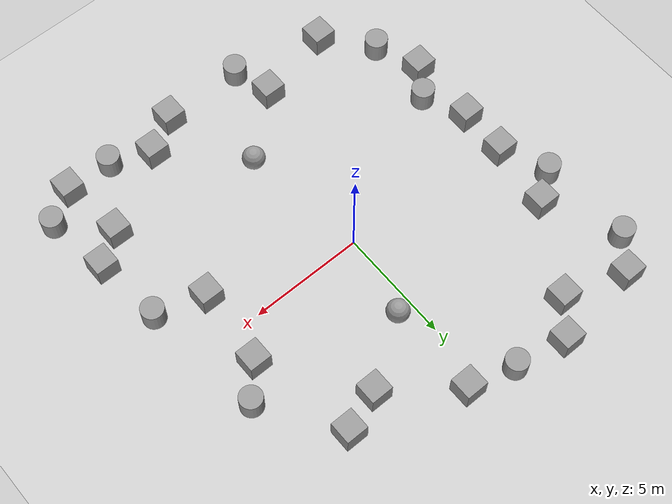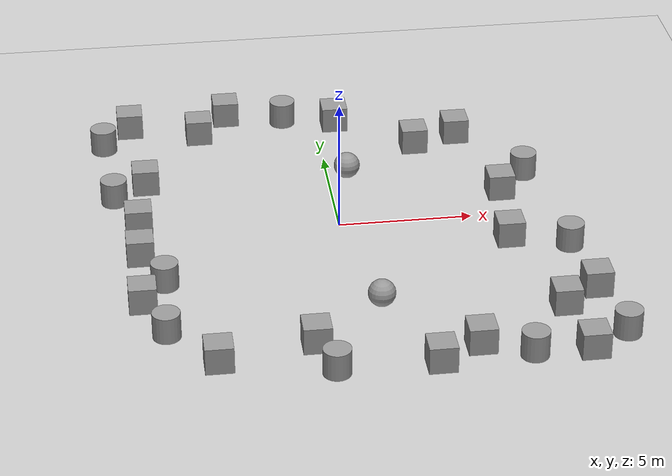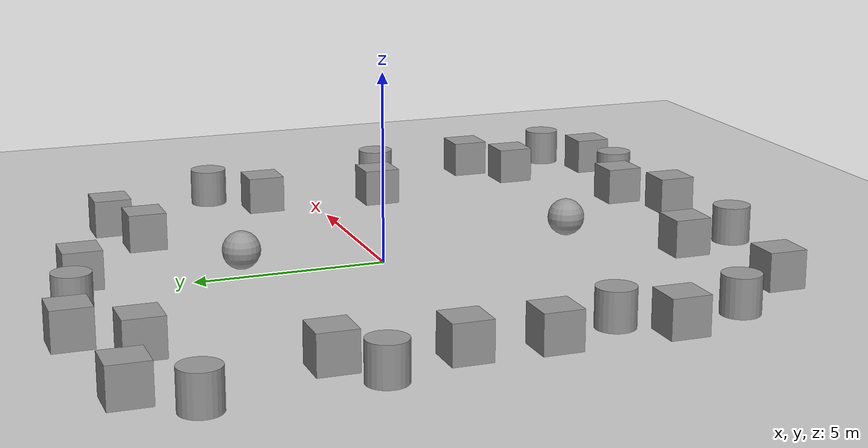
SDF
<sdf version="1.6">
 <world name="default">
  <light name="sun" type="directional">
   <pose>0 0 10 0 -0 0</pose>
   <diffuse>0.8 0.8 0.8 1</diffuse>
   <specular>0.1 0.1 0.1 1</specular>
   <attenuation>
    <range>1000</range>
    <constant>0.9</constant>
    <linear>0.01</linear>
    <quadratic>0.001</quadratic>
   </attenuation>
   <direction>-0.5 0.5 -1</direction>
  </light>
  <model name="ground_plane">
   <static>1</static>
   <link name="link">
    <collision name="collision">
     <geometry><plane><normal>0 0 1</normal><size>100 100</size></plane></geometry>
     <surface><friction><ode><mu>100</mu><mu2>50</mu2></ode></friction></surface>
    </collision>
    <visual name="visual">
     <cast_shadows>0</cast_shadows>
     <geometry><plane><normal>0 0 1</normal><size>100 100</size></plane></geometry>
     <material>
      <script><uri>file://media/materials/scripts/gazebo.material</uri><name>Gazebo/Grey</name></script>
     </material>
    </visual>
   </link>
  </model>
  <gravity>0 0 -9.8</gravity>
  <magnetic_field>6e-06 2.3e-05 -4.2e-05</magnetic_field>
  <atmosphere type="adiabatic"/>
  <physics name="default_physics" default="0" type="ode">
   <max_step_size>0.001</max_step_size>
   <real_time_factor>1</real_time_factor>
   <real_time_update_rate>1000</real_time_update_rate>
  </physics>
  <scene><ambient>0.4 0.4 0.4 1</ambient><background>0.7 0.7 0.7 1</background><shadows>1</shadows></scene>
  <spherical_coordinates>
   <surface_model>EARTH_WGS84</surface_model>
   <latitude_deg>0</latitude_deg>
   <longitude_deg>0</longitude_deg>
   <elevation>0</elevation>
   <heading_deg>0</heading_deg>
  </spherical_coordinates>
  <model name="unit_box">
   <pose>-5.1932 -8.54457 0.499995 0 1e-05 0</pose>
   <link name="link">
    <inertial>
     <mass>1</mass>
     <inertia>
      <ixx>0.166667</ixx>
      <ixy>0</ixy>
      <ixz>0</ixz>
      <iyy>0.166667</iyy>
      <iyz>0</iyz>
      <izz>0.166667</izz>
     </inertia>
    </inertial>
    <collision name="collision"><geometry><box><size>1 1 1</size></box></geometry></collision>
    <visual name="visual">
     <geometry><box><size>1 1 1</size></box></geometry>
     <material>
      <script><name>Gazebo/Grey</name><uri>file://media/materials/scripts/gazebo.material</uri></script>
     </material>
    </visual>
   </link>
  </model>
  <model name="unit_sphere">
   <pose>0.805066 -5.54254 0.5 0 -0 0</pose>
   <link name="link">
    <inertial>
     <mass>1</mass>
     <inertia><ixx>0.1</ixx><ixy>0</ixy><ixz>0</ixz><iyy>0.1</iyy><iyz>0</iyz><izz>0.1</izz></inertia>
    </inertial>
    <collision name="collision"><geometry><sphere><radius>0.5</radius></sphere></geometry></collision>
    <visual name="visual">
     <geometry><sphere><radius>0.5</radius></sphere></geometry>
     <material>
      <script><name>Gazebo/Grey</name><uri>file://media/materials/scripts/gazebo.material</uri></script>
     </material>
    </visual>
   </link>
  </model>
  <model name="unit_sphere_0">
   <pose>0.742958 3.57803 0.5 0 -0 0</pose>
   <link name="link">
    <inertial>
     <mass>1</mass>
     <inertia><ixx>0.1</ixx><ixy>0</ixy><ixz>0</ixz><iyy>0.1</iyy><iyz>0</iyz><izz>0.1</izz></inertia>
    </inertial>
    <collision name="collision"><geometry><sphere><radius>0.5</radius></sphere></geometry></collision>
    <visual name="visual">
     <geometry><sphere><radius>0.5</radius></sphere></geometry>
     <material>
      <script><name>Gazebo/Grey</name><uri>file://media/materials/scripts/gazebo.material</uri></script>
     </material>
    </visual>
   </link>
  </model>
  <model name="unit_cylinder">
   <pose>-1.27782 -9.47436 0.499992 -3e-06 -4e-06 -0</pose>
   <link name="link">
    <inertial>
     <mass>1</mass>
     <inertia><ixx>0.145833</ixx><ixy>0</ixy><ixz>0</ixz><iyy>0.145833</iyy><iyz>0</iyz><izz>0.125</izz></inertia>
    </inertial>
    <collision name="collision">
     <geometry><cylinder><radius>0.5</radius><length>1</length></cylinder></geometry>
    </collision>
    <visual name="visual">
     <geometry><cylinder><radius>0.5</radius><length>1</length></cylinder></geometry>
     <material>
      <script><name>Gazebo/Grey</name><uri>file://media/materials/scripts/gazebo.material</uri></script>
     </material>
    </visual>
   </link>
  </model>
  <model name="unit_box_0">
   <pose>-1.78077 -7.7902 0.499995 0 1e-05 0</pose>
   <link name="link">
    <inertial>
     <mass>1</mass>
     <inertia>
      <ixx>0.166667</ixx>
      <ixy>0</ixy>
      <ixz>0</ixz>
      <iyy>0.166667</iyy>
      <iyz>0</iyz>
      <izz>0.166667</izz>
     </inertia>
    </inertial>
    <collision name="collision"><geometry><box><size>1 1 1</size></box></geometry></collision>
    <visual name="visual">
     <geometry><box><size>1 1 1</size></box></geometry>
     <material>
      <script><name>Gazebo/Grey</name><uri>file://media/materials/scripts/gazebo.material</uri></script>
     </material>
    </visual>
   </link>
  </model>
  <model name="unit_box_1">
   <pose>2.26891 -9.47752 0.499995 -1e-05 0 0</pose>
   <link name="link">
    <inertial>
     <mass>1</mass>
     <inertia>
      <ixx>0.166667</ixx>
      <ixy>0</ixy>
      <ixz>0</ixz>
      <iyy>0.166667</iyy>
      <iyz>0</iyz>
      <izz>0.166667</izz>
     </inertia>
    </inertial>
    <collision name="collision"><geometry><box><size>1 1 1</size></box></geometry></collision>
    <visual name="visual">
     <geometry><box><size>1 1 1</size></box></geometry>
     <material>
      <script><name>Gazebo/Grey</name><uri>file://media/materials/scripts/gazebo.material</uri></script>
     </material>
    </visual>
   </link>
  </model>
  <model name="unit_cylinder_0">
   <pose>-6.8306 -6.56388 0.499994 -4e-06 -3e-06 -0</pose>
   <link name="link">
    <inertial>
     <mass>1</mass>
     <inertia><ixx>0.145833</ixx><ixy>0</ixy><ixz>0</ixz><iyy>0.145833</iyy><iyz>0</iyz><izz>0.125</izz></inertia>
    </inertial>
    <collision name="collision">
     <geometry><cylinder><radius>0.5</radius><length>1</length></cylinder></geometry>
    </collision>
    <visual name="visual">
     <geometry><cylinder><radius>0.5</radius><length>1</length></cylinder></geometry>
     <material>
      <script><name>Gazebo/Grey</name><uri>file://media/materials/scripts/gazebo.material</uri></script>
     </material>
    </visual>
   </link>
  </model>
  <model name="unit_box_2">
   <pose>-7.55878 -4.59602 0.499995 -1e-05 0 0</pose>
   <link name="link">
    <inertial>
     <mass>1</mass>
     <inertia>
      <ixx>0.166667</ixx>
      <ixy>0</ixy>
      <ixz>0</ixz>
      <iyy>0.166667</iyy>
      <iyz>0</iyz>
      <izz>0.166667</izz>
     </inertia>
    </inertial>
    <collision name="collision"><geometry><box><size>1 1 1</size></box></geometry></collision>
    <visual name="visual">
     <geometry><box><size>1 1 1</size></box></geometry>
     <material>
      <script><name>Gazebo/Grey</name><uri>file://media/materials/scripts/gazebo.material</uri></script>
     </material>
    </visual>
   </link>
  </model>
  <model name="unit_cylinder_1">
   <pose>-6.70404 -3.35499 0.499992 -3e-06 2e-06 0</pose>
   <link name="link">
    <inertial>
     <mass>1</mass>
     <inertia><ixx>0.145833</ixx><ixy>0</ixy><ixz>0</ixz><iyy>0.145833</iyy><iyz>0</iyz><izz>0.125</izz></inertia>
    </inertial>
    <collision name="collision">
     <geometry><cylinder><radius>0.5</radius><length>1</length></cylinder></geometry>
    </collision>
    <visual name="visual">
     <geometry><cylinder><radius>0.5</radius><length>1</length></cylinder></geometry>
     <material>
      <script><name>Gazebo/Grey</name><uri>file://media/materials/scripts/gazebo.material</uri></script>
     </material>
    </visual>
   </link>
  </model>
  <model name="unit_box_3">
   <pose>-7.49308 -1.47385 0.499995 -1e-05 0 0</pose>
   <link name="link">
    <inertial>
     <mass>1</mass>
     <inertia>
      <ixx>0.166667</ixx>
      <ixy>0</ixy>
      <ixz>0</ixz>
      <iyy>0.166667</iyy>
      <iyz>0</iyz>
      <izz>0.166667</izz>
     </inertia>
    </inertial>
    <collision name="collision"><geometry><box><size>1 1 1</size></box></geometry></collision>
    <visual name="visual">
     <geometry><box><size>1 1 1</size></box></geometry>
     <material>
      <script><name>Gazebo/Grey</name><uri>file://media/materials/scripts/gazebo.material</uri></script>
     </material>
    </visual>
   </link>
  </model>
  <model name="unit_box_4">
   <pose>-7.44449 0.656898 0.499995 0 1e-05 0</pose>
   <link name="link">
    <inertial>
     <mass>1</mass>
     <inertia>
      <ixx>0.166667</ixx>
      <ixy>0</ixy>
      <ixz>0</ixz>
      <iyy>0.166667</iyy>
      <iyz>0</iyz>
      <izz>0.166667</izz>
     </inertia>
    </inertial>
    <collision name="collision"><geometry><box><size>1 1 1</size></box></geometry></collision>
    <visual name="visual">
     <geometry><box><size>1 1 1</size></box></geometry>
     <material>
      <script><name>Gazebo/Grey</name><uri>file://media/materials/scripts/gazebo.material</uri></script>
     </material>
    </visual>
   </link>
  </model>
  <model name="unit_box_5">
   <pose>3.79778 -8.57423 0.499995 -1e-05 0 0</pose>
   <link name="link">
    <inertial>
     <mass>1</mass>
     <inertia>
      <ixx>0.166667</ixx>
      <ixy>0</ixy>
      <ixz>0</ixz>
      <iyy>0.166667</iyy>
      <iyz>0</iyz>
      <izz>0.166667</izz>
     </inertia>
    </inertial>
    <collision name="collision"><geometry><box><size>1 1 1</size></box></geometry></collision>
    <visual name="visual">
     <geometry><box><size>1 1 1</size></box></geometry>
     <material>
      <script><name>Gazebo/Grey</name><uri>file://media/materials/scripts/gazebo.material</uri></script>
     </material>
    </visual>
   </link>
  </model>
  <model name="unit_cylinder_2">
   <pose>-8.26882 2.7434 0.499993 -3e-06 2e-06 0</pose>
   <link name="link">
    <inertial>
     <mass>1</mass>
     <inertia><ixx>0.145833</ixx><ixy>0</ixy><ixz>0</ixz><iyy>0.145833</iyy><iyz>0</iyz><izz>0.125</izz></inertia>
    </inertial>
    <collision name="collision">
     <geometry><cylinder><radius>0.5</radius><length>1</length></cylinder></geometry>
    </collision>
    <visual name="visual">
     <geometry><cylinder><radius>0.5</radius><length>1</length></cylinder></geometry>
     <material>
      <script><name>Gazebo/Grey</name><uri>file://media/materials/scripts/gazebo.material</uri></script>
     </material>
    </visual>
   </link>
  </model>
  <model name="unit_box_6">
   <pose>-7.03898 3.58624 0.499995 -1e-05 0 0</pose>
   <link name="link">
    <inertial>
     <mass>1</mass>
     <inertia>
      <ixx>0.166667</ixx>
      <ixy>0</ixy>
      <ixz>0</ixz>
      <iyy>0.166667</iyy>
      <iyz>0</iyz>
      <izz>0.166667</izz>
     </inertia>
    </inertial>
    <collision name="collision"><geometry><box><size>1 1 1</size></box></geometry></collision>
    <visual name="visual">
     <geometry><box><size>1 1 1</size></box></geometry>
     <material>
      <script><name>Gazebo/Grey</name><uri>file://media/materials/scripts/gazebo.material</uri></script>
     </material>
    </visual>
   </link>
  </model>
  <model name="unit_cylinder_3">
   <pose>-8.51797 6.81147 0.499993 -3e-06 2e-06 0</pose>
   <link name="link">
    <inertial>
     <mass>1</mass>
     <inertia><ixx>0.145833</ixx><ixy>0</ixy><ixz>0</ixz><iyy>0.145833</iyy><iyz>0</iyz><izz>0.125</izz></inertia>
    </inertial>
    <collision name="collision">
     <geometry><cylinder><radius>0.5</radius><length>1</length></cylinder></geometry>
    </collision>
    <visual name="visual">
     <geometry><cylinder><radius>0.5</radius><length>1</length></cylinder></geometry>
     <material>
      <script><name>Gazebo/Grey</name><uri>file://media/materials/scripts/gazebo.material</uri></script>
     </material>
    </visual>
   </link>
  </model>
  <model name="unit_box_7">
   <pose>-7.43907 8.12874 0.499995 -1e-05 0 0</pose>
   <link name="link">
    <inertial>
     <mass>1</mass>
     <inertia>
      <ixx>0.166667</ixx>
      <ixy>0</ixy>
      <ixz>0</ixz>
      <iyy>0.166667</iyy>
      <iyz>0</iyz>
      <izz>0.166667</izz>
     </inertia>
    </inertial>
    <collision name="collision"><geometry><box><size>1 1 1</size></box></geometry></collision>
    <visual name="visual">
     <geometry><box><size>1 1 1</size></box></geometry>
     <material>
      <script><name>Gazebo/Grey</name><uri>file://media/materials/scripts/gazebo.material</uri></script>
     </material>
    </visual>
   </link>
  </model>
  <model name="unit_box_8">
   <pose>-4.74207 7.27141 0.499995 0 1e-05 0</pose>
   <link name="link">
    <inertial>
     <mass>1</mass>
     <inertia>
      <ixx>0.166667</ixx>
      <ixy>0</ixy>
      <ixz>0</ixz>
      <iyy>0.166667</iyy>
      <iyz>0</iyz>
      <izz>0.166667</izz>
     </inertia>
    </inertial>
    <collision name="collision"><geometry><box><size>1 1 1</size></box></geometry></collision>
    <visual name="visual">
     <geometry><box><size>1 1 1</size></box></geometry>
     <material>
      <script><name>Gazebo/Grey</name><uri>file://media/materials/scripts/gazebo.material</uri></script>
     </material>
    </visual>
   </link>
  </model>
  <model name="unit_box_9">
   <pose>-3.5708 8.64898 0.499995 -1e-05 0 0</pose>
   <link name="link">
    <inertial>
     <mass>1</mass>
     <inertia>
      <ixx>0.166667</ixx>
      <ixy>0</ixy>
      <ixz>0</ixz>
      <iyy>0.166667</iyy>
      <iyz>0</iyz>
      <izz>0.166667</izz>
     </inertia>
    </inertial>
    <collision name="collision"><geometry><box><size>1 1 1</size></box></geometry></collision>
    <visual name="visual">
     <geometry><box><size>1 1 1</size></box></geometry>
     <material>
      <script><name>Gazebo/Grey</name><uri>file://media/materials/scripts/gazebo.material</uri></script>
     </material>
    </visual>
   </link>
  </model>
  <model name="unit_cylinder_4">
   <pose>-1.29467 8.21038 0.499992 -3e-06 3e-06 0</pose>
   <link name="link">
    <inertial>
     <mass>1</mass>
     <inertia><ixx>0.145833</ixx><ixy>0</ixy><ixz>0</ixz><iyy>0.145833</iyy><iyz>0</iyz><izz>0.125</izz></inertia>
    </inertial>
    <collision name="collision">
     <geometry><cylinder><radius>0.5</radius><length>1</length></cylinder></geometry>
    </collision>
    <visual name="visual">
     <geometry><cylinder><radius>0.5</radius><length>1</length></cylinder></geometry>
     <material>
      <script><name>Gazebo/Grey</name><uri>file://media/materials/scripts/gazebo.material</uri></script>
     </material>
    </visual>
   </link>
  </model>
  <model name="unit_cylinder_5">
   <pose>5.5312 -9.29567 0.499998 3e-06 -3e-06 0</pose>
   <link name="link">
    <inertial>
     <mass>1</mass>
     <inertia><ixx>0.145833</ixx><ixy>0</ixy><ixz>0</ixz><iyy>0.145833</iyy><iyz>0</iyz><izz>0.125</izz></inertia>
    </inertial>
    <collision name="collision">
     <geometry><cylinder><radius>0.5</radius><length>1</length></cylinder></geometry>
    </collision>
    <visual name="visual">
     <geometry><cylinder><radius>0.5</radius><length>1</length></cylinder></geometry>
     <material>
      <script><name>Gazebo/Grey</name><uri>file://media/materials/scripts/gazebo.material</uri></script>
     </material>
    </visual>
   </link>
  </model>
  <model name="unit_box_10">
   <pose>0.732248 7.68303 0.499995 0 1e-05 0</pose>
   <link name="link">
    <inertial>
     <mass>1</mass>
     <inertia>
      <ixx>0.166667</ixx>
      <ixy>0</ixy>
      <ixz>0</ixz>
      <iyy>0.166667</iyy>
      <iyz>0</iyz>
      <izz>0.166667</izz>
     </inertia>
    </inertial>
    <collision name="collision"><geometry><box><size>1 1 1</size></box></geometry></collision>
    <visual name="visual">
     <geometry><box><size>1 1 1</size></box></geometry>
     <material>
      <script><name>Gazebo/Grey</name><uri>file://media/materials/scripts/gazebo.material</uri></script>
     </material>
    </visual>
   </link>
  </model>
  <model name="unit_box_11">
   <pose>7.55374 -9.34428 0.499995 -1e-05 0 0</pose>
   <link name="link">
    <inertial>
     <mass>1</mass>
     <inertia>
      <ixx>0.166667</ixx>
      <ixy>0</ixy>
      <ixz>0</ixz>
      <iyy>0.166667</iyy>
      <iyz>0</iyz>
      <izz>0.166667</izz>
     </inertia>
    </inertial>
    <collision name="collision"><geometry><box><size>1 1 1</size></box></geometry></collision>
    <visual name="visual">
     <geometry><box><size>1 1 1</size></box></geometry>
     <material>
      <script><name>Gazebo/Grey</name><uri>file://media/materials/scripts/gazebo.material</uri></script>
     </material>
    </visual>
   </link>
  </model>
  <model name="unit_cylinder_6">
   <pose>8.97243 -8.42179 0.499992 -3e-06 3e-06 0</pose>
   <link name="link">
    <inertial>
     <mass>1</mass>
     <inertia><ixx>0.145833</ixx><ixy>0</ixy><ixz>0</ixz><iyy>0.145833</iyy><iyz>0</iyz><izz>0.125</izz></inertia>
    </inertial>
    <collision name="collision">
     <geometry><cylinder><radius>0.5</radius><length>1</length></cylinder></geometry>
    </collision>
    <visual name="visual">
     <geometry><cylinder><radius>0.5</radius><length>1</length></cylinder></geometry>
     <material>
      <script><name>Gazebo/Grey</name><uri>file://media/materials/scripts/gazebo.material</uri></script>
     </material>
    </visual>
   </link>
  </model>
  <model name="unit_box_12">
   <pose>7.19996 -6.56844 0.499995 -1e-05 0 0</pose>
   <link name="link">
    <inertial>
     <mass>1</mass>
     <inertia>
      <ixx>0.166667</ixx>
      <ixy>0</ixy>
      <ixz>0</ixz>
      <iyy>0.166667</iyy>
      <iyz>0</iyz>
      <izz>0.166667</izz>
     </inertia>
    </inertial>
    <collision name="collision"><geometry><box><size>1 1 1</size></box></geometry></collision>
    <visual name="visual">
     <geometry><box><size>1 1 1</size></box></geometry>
     <material>
      <script><name>Gazebo/Grey</name><uri>file://media/materials/scripts/gazebo.material</uri></script>
     </material>
    </visual>
   </link>
  </model>
  <model name="unit_box_13">
   <pose>8.51664 -5.59915 0.499995 0 1e-05 0</pose>
   <link name="link">
    <inertial>
     <mass>1</mass>
     <inertia>
      <ixx>0.166667</ixx>
      <ixy>0</ixy>
      <ixz>0</ixz>
      <iyy>0.166667</iyy>
      <iyz>0</iyz>
      <izz>0.166667</izz>
     </inertia>
    </inertial>
    <collision name="collision"><geometry><box><size>1 1 1</size></box></geometry></collision>
    <visual name="visual">
     <geometry><box><size>1 1 1</size></box></geometry>
     <material>
      <script><name>Gazebo/Grey</name><uri>file://media/materials/scripts/gazebo.material</uri></script>
     </material>
    </visual>
   </link>
  </model>
  <model name="unit_box_14">
   <pose>6.08288 -1.88299 0.499995 -1e-05 0 0</pose>
   <link name="link">
    <inertial>
     <mass>1</mass>
     <inertia>
      <ixx>0.166667</ixx>
      <ixy>0</ixy>
      <ixz>0</ixz>
      <iyy>0.166667</iyy>
      <iyz>0</iyz>
      <izz>0.166667</izz>
     </inertia>
    </inertial>
    <collision name="collision"><geometry><box><size>1 1 1</size></box></geometry></collision>
    <visual name="visual">
     <geometry><box><size>1 1 1</size></box></geometry>
     <material>
      <script><name>Gazebo/Grey</name><uri>file://media/materials/scripts/gazebo.material</uri></script>
     </material>
    </visual>
   </link>
  </model>
  <model name="unit_cylinder_7">
   <pose>8.21943 -2.55004 0.499992 -3e-06 -4e-06 -0</pose>
   <link name="link">
    <inertial>
     <mass>1</mass>
     <inertia><ixx>0.145833</ixx><ixy>0</ixy><ixz>0</ixz><iyy>0.145833</iyy><iyz>0</iyz><izz>0.125</izz></inertia>
    </inertial>
    <collision name="collision">
     <geometry><cylinder><radius>0.5</radius><length>1</length></cylinder></geometry>
    </collision>
    <visual name="visual">
     <geometry><cylinder><radius>0.5</radius><length>1</length></cylinder></geometry>
     <material>
      <script><name>Gazebo/Grey</name><uri>file://media/materials/scripts/gazebo.material</uri></script>
     </material>
    </visual>
   </link>
  </model>
  <model name="unit_box_15">
   <pose>6.37059 1.50924 0.499995 -1e-05 0 0</pose>
   <link name="link">
    <inertial>
     <mass>1</mass>
     <inertia>
      <ixx>0.166667</ixx>
      <ixy>0</ixy>
      <ixz>0</ixz>
      <iyy>0.166667</iyy>
      <iyz>0</iyz>
      <izz>0.166667</izz>
     </inertia>
    </inertial>
    <collision name="collision"><geometry><box><size>1 1 1</size></box></geometry></collision>
    <visual name="visual">
     <geometry><box><size>1 1 1</size></box></geometry>
     <material>
      <script><name>Gazebo/Grey</name><uri>file://media/materials/scripts/gazebo.material</uri></script>
     </material>
    </visual>
   </link>
  </model>
  <model name="unit_cylinder_8">
   <pose>7.53095 2.82048 0.499997 3e-06 4e-06 -0</pose>
   <link name="link">
    <inertial>
     <mass>1</mass>
     <inertia><ixx>0.145833</ixx><ixy>0</ixy><ixz>0</ixz><iyy>0.145833</iyy><iyz>0</iyz><izz>0.125</izz></inertia>
    </inertial>
    <collision name="collision">
     <geometry><cylinder><radius>0.5</radius><length>1</length></cylinder></geometry>
    </collision>
    <visual name="visual">
     <geometry><cylinder><radius>0.5</radius><length>1</length></cylinder></geometry>
     <material>
      <script><name>Gazebo/Grey</name><uri>file://media/materials/scripts/gazebo.material</uri></script>
     </material>
    </visual>
   </link>
  </model>
  <model name="unit_box_16">
   <pose>3.63786 5.49165 0.499995 -1e-05 0 0</pose>
   <link name="link">
    <inertial>
     <mass>1</mass>
     <inertia>
      <ixx>0.166667</ixx>
      <ixy>0</ixy>
      <ixz>0</ixz>
      <iyy>0.166667</iyy>
      <iyz>0</iyz>
      <izz>0.166667</izz>
     </inertia>
    </inertial>
    <collision name="collision"><geometry><box><size>1 1 1</size></box></geometry></collision>
    <visual name="visual">
     <geometry><box><size>1 1 1</size></box></geometry>
     <material>
      <script><name>Gazebo/Grey</name><uri>file://media/materials/scripts/gazebo.material</uri></script>
     </material>
    </visual>
   </link>
  </model>
  <model name="unit_box_17">
   <pose>5.37988 6.08397 0.5 0 -0 0</pose>
   <link name="link">
    <inertial>
     <mass>1</mass>
     <inertia>
      <ixx>0.166667</ixx>
      <ixy>0</ixy>
      <ixz>0</ixz>
      <iyy>0.166667</iyy>
      <iyz>0</iyz>
      <izz>0.166667</izz>
     </inertia>
    </inertial>
    <collision name="collision"><geometry><box><size>1 1 1</size></box></geometry></collision>
    <visual name="visual">
     <geometry><box><size>1 1 1</size></box></geometry>
     <material>
      <script><name>Gazebo/Grey</name><uri>file://media/materials/scripts/gazebo.material</uri></script>
     </material>
    </visual>
   </link>
  </model>
 </world>
</sdf>
